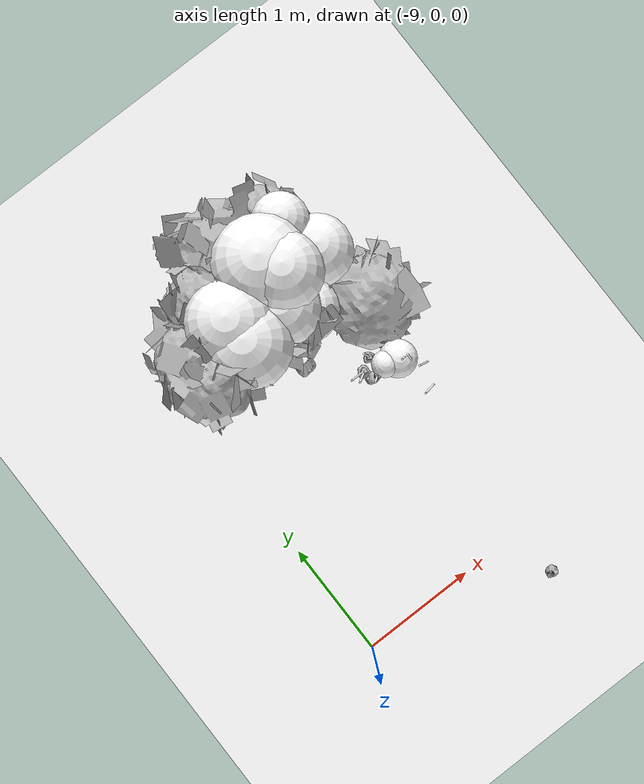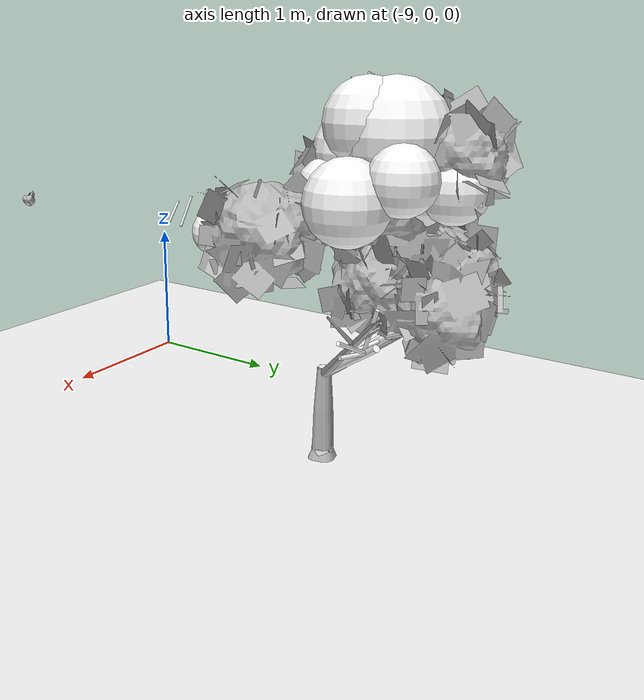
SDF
<sdf version="1.11">
 <world name="peach_orchard">
  <model name="ground">
   <static>true</static>
   <link name="link">
    <visual name="soil">
     <geometry><plane><normal>0 0 1</normal><size>32 22</size></plane></geometry>
     <material>
      <ambient>1 1 1 1</ambient>
      <diffuse>1 1 1 1</diffuse>
      <specular>0.1 0.1 0.1 1</specular>
      <pbr>
       <metal>
        <albedo_map>textures/soil_albedo.png</albedo_map>
        <normal_map type="tangent">textures/soil_normal.png</normal_map>
        <roughness>0.95</roughness>
        <metalness>0</metalness>
       </metal>
      </pbr>
     </material>
    </visual>
    <collision name="c_soil">
     <geometry><plane><normal>0 0 1</normal><size>32 22</size></plane></geometry>
    </collision>
   </link>
  </model>
  <model name="tree_r0_t4">
   <pose>-8 2.2 0 0 0 0</pose>
   <static>true</static>
   <link name="link">
    <visual name="tree_mesh">
     <pose>0 0 0 0 0 0.124176</pose>
     <geometry>
      <mesh><uri>model://peach_sim/meshes/peach_tree_a.glb</uri><scale>1.03481 1.03481 1.03481</scale></mesh>
     </geometry>
    </visual>
    <visual name="trunk_0">
     <pose>0 0 0.16603 0 0 0</pose>
     <geometry><cylinder><radius>0.0467822</radius><length>0.332061</length></cylinder></geometry>
     <material>
      <ambient>1 1 1 1</ambient>
      <diffuse>1 1 1 1</diffuse>
      <specular>0.1 0.1 0.1 1</specular>
      <pbr>
       <metal>
        <albedo_map>textures/bark_albedo.png</albedo_map>
        <normal_map type="tangent">textures/bark_normal.png</normal_map>
        <roughness>0.9</roughness>
        <metalness>0</metalness>
       </metal>
      </pbr>
     </material>
    </visual>
    <collision name="c_trunk_0">
     <pose>0 0 0.16603 0 0 0</pose>
     <geometry><cylinder><radius>0.0467822</radius><length>0.332061</length></cylinder></geometry>
    </collision>
    <visual name="trunk_1">
     <pose>0 0 0.467904 0 0 0</pose>
     <geometry><cylinder><radius>0.0336832</radius><length>0.271686</length></cylinder></geometry>
     <material>
      <ambient>1 1 1 1</ambient>
      <diffuse>1 1 1 1</diffuse>
      <specular>0.1 0.1 0.1 1</specular>
      <pbr>
       <metal>
        <albedo_map>textures/bark_albedo.png</albedo_map>
        <normal_map type="tangent">textures/bark_normal.png</normal_map>
        <roughness>0.9</roughness>
        <metalness>0</metalness>
       </metal>
      </pbr>
     </material>
    </visual>
    <collision name="c_trunk_1">
     <pose>0 0 0.467904 0 0 0</pose>
     <geometry><cylinder><radius>0.0336832</radius><length>0.271686</length></cylinder></geometry>
    </collision>
    <visual name="root_flare">
     <pose>0 0 0.035 0 0 0</pose>
     <geometry><cylinder><radius>0.0678342</radius><length>0.07</length></cylinder></geometry>
     <material>
      <ambient>1 1 1 1</ambient>
      <diffuse>1 1 1 1</diffuse>
      <specular>0.1 0.1 0.1 1</specular>
      <pbr>
       <metal>
        <albedo_map>textures/bark_albedo.png</albedo_map>
        <normal_map type="tangent">textures/bark_normal.png</normal_map>
        <roughness>0.95</roughness>
        <metalness>0</metalness>
       </metal>
      </pbr>
     </material>
    </visual>
    <visual name="scaffold_0">
     <pose>0.0321196 0.305239 0.796414 0 0.905205 1.46595</pose>
     <geometry><cylinder><radius>0.022</radius><length>0.78043</length></cylinder></geometry>
     <material>
      <ambient>1 1 1 1</ambient>
      <diffuse>1 1 1 1</diffuse>
      <specular>0.1 0.1 0.1 1</specular>
      <pbr>
       <metal>
        <albedo_map>textures/bark_albedo.png</albedo_map>
        <normal_map type="tangent">textures/bark_normal.png</normal_map>
        <roughness>0.9</roughness>
        <metalness>0</metalness>
       </metal>
      </pbr>
     </material>
    </visual>
    <collision name="c_scaffold_0">
     <pose>0.0321196 0.305239 0.796414 0 0.905205 1.46595</pose>
     <geometry><cylinder><radius>0.022</radius><length>0.78043</length></cylinder></geometry>
    </collision>
    <visual name="branchlet_0_0">
     <pose>-0.00279812 0.402704 1.02369 0 0.55477 -2.37734</pose>
     <geometry><cylinder><radius>0.012</radius><length>0.26425</length></cylinder></geometry>
     <material>
      <ambient>1 1 1 1</ambient>
      <diffuse>1 1 1 1</diffuse>
      <specular>0.1 0.1 0.1 1</specular>
      <pbr>
       <metal>
        <albedo_map>textures/bark_albedo.png</albedo_map>
        <normal_map type="tangent">textures/bark_normal.png</normal_map>
        <roughness>0.9</roughness>
        <metalness>0</metalness>
       </metal>
      </pbr>
     </material>
    </visual>
    <visual name="branchlet_0_1">
     <pose>0.124284 0.525791 0.946869 0 1.1553 0.909977</pose>
     <geometry><cylinder><radius>0.012</radius><length>0.284041</length></cylinder></geometry>
     <material>
      <ambient>1 1 1 1</ambient>
      <diffuse>1 1 1 1</diffuse>
      <specular>0.1 0.1 0.1 1</specular>
      <pbr>
       <metal>
        <albedo_map>textures/bark_albedo.png</albedo_map>
        <normal_map type="tangent">textures/bark_normal.png</normal_map>
        <roughness>0.9</roughness>
        <metalness>0</metalness>
       </metal>
      </pbr>
     </material>
    </visual>
    <visual name="branchlet_0_2">
     <pose>0.156323 0.350018 0.850596 0 1.71611 -0.387775</pose>
     <geometry><cylinder><radius>0.012</radius><length>0.250147</length></cylinder></geometry>
     <material>
      <ambient>1 1 1 1</ambient>
      <diffuse>1 1 1 1</diffuse>
      <specular>0.1 0.1 0.1 1</specular>
      <pbr>
       <metal>
        <albedo_map>textures/bark_albedo.png</albedo_map>
        <normal_map type="tangent">textures/bark_normal.png</normal_map>
        <roughness>0.9</roughness>
        <metalness>0</metalness>
       </metal>
      </pbr>
     </material>
    </visual>
    <visual name="scaffold_1">
     <pose>0.118995 0.234432 0.724889 0 0.998296 1.1011</pose>
     <geometry><cylinder><radius>0.022</radius><length>0.625552</length></cylinder></geometry>
     <material>
      <ambient>1 1 1 1</ambient>
      <diffuse>1 1 1 1</diffuse>
      <specular>0.1 0.1 0.1 1</specular>
      <pbr>
       <metal>
        <albedo_map>textures/bark_albedo.png</albedo_map>
        <normal_map type="tangent">textures/bark_normal.png</normal_map>
        <roughness>0.9</roughness>
        <metalness>0</metalness>
       </metal>
      </pbr>
     </material>
    </visual>
    <collision name="c_scaffold_1">
     <pose>0.118995 0.234432 0.724889 0 0.998296 1.1011</pose>
     <geometry><cylinder><radius>0.022</radius><length>0.625552</length></cylinder></geometry>
    </collision>
    <visual name="branchlet_1_0">
     <pose>0.342301 0.380955 0.907187 0 1.11521 -0.0484354</pose>
     <geometry><cylinder><radius>0.012</radius><length>0.324114</length></cylinder></geometry>
     <material>
      <ambient>1 1 1 1</ambient>
      <diffuse>1 1 1 1</diffuse>
      <specular>0.1 0.1 0.1 1</specular>
      <pbr>
       <metal>
        <albedo_map>textures/bark_albedo.png</albedo_map>
        <normal_map type="tangent">textures/bark_normal.png</normal_map>
        <roughness>0.9</roughness>
        <metalness>0</metalness>
       </metal>
      </pbr>
     </material>
    </visual>
    <visual name="branchlet_1_1">
     <pose>0.209369 0.412528 0.962713 0 0.389737 1.10147</pose>
     <geometry><cylinder><radius>0.012</radius><length>0.320844</length></cylinder></geometry>
     <material>
      <ambient>1 1 1 1</ambient>
      <diffuse>1 1 1 1</diffuse>
      <specular>0.1 0.1 0.1 1</specular>
      <pbr>
       <metal>
        <albedo_map>textures/bark_albedo.png</albedo_map>
        <normal_map type="tangent">textures/bark_normal.png</normal_map>
        <roughness>0.9</roughness>
        <metalness>0</metalness>
       </metal>
      </pbr>
     </material>
    </visual>
    <visual name="branchlet_1_2">
     <pose>0.299282 0.365067 0.850428 0 1.48755 -0.307441</pose>
     <geometry><cylinder><radius>0.012</radius><length>0.206692</length></cylinder></geometry>
     <material>
      <ambient>1 1 1 1</ambient>
      <diffuse>1 1 1 1</diffuse>
      <specular>0.1 0.1 0.1 1</specular>
      <pbr>
       <metal>
        <albedo_map>textures/bark_albedo.png</albedo_map>
        <normal_map type="tangent">textures/bark_normal.png</normal_map>
        <roughness>0.9</roughness>
        <metalness>0</metalness>
       </metal>
      </pbr>
     </material>
    </visual>
    <visual name="scaffold_2">
     <pose>-0.188945 0.313308 0.818416 0 0.947599 2.11347</pose>
     <geometry><cylinder><radius>0.022</radius><length>0.901143</length></cylinder></geometry>
     <material>
      <ambient>1 1 1 1</ambient>
      <diffuse>1 1 1 1</diffuse>
      <specular>0.1 0.1 0.1 1</specular>
      <pbr>
       <metal>
        <albedo_map>textures/bark_albedo.png</albedo_map>
        <normal_map type="tangent">textures/bark_normal.png</normal_map>
        <roughness>0.9</roughness>
        <metalness>0</metalness>
       </metal>
      </pbr>
     </material>
    </visual>
    <collision name="c_scaffold_2">
     <pose>-0.188945 0.313308 0.818416 0 0.947599 2.11347</pose>
     <geometry><cylinder><radius>0.022</radius><length>0.901143</length></cylinder></geometry>
    </collision>
    <visual name="branchlet_2_0">
     <pose>-0.113005 0.324711 0.981083 0 0.86739 -0.436879</pose>
     <geometry><cylinder><radius>0.012</radius><length>0.333666</length></cylinder></geometry>
     <material>
      <ambient>1 1 1 1</ambient>
      <diffuse>1 1 1 1</diffuse>
      <specular>0.1 0.1 0.1 1</specular>
      <pbr>
       <metal>
        <albedo_map>textures/bark_albedo.png</albedo_map>
        <normal_map type="tangent">textures/bark_normal.png</normal_map>
        <roughness>0.9</roughness>
        <metalness>0</metalness>
       </metal>
      </pbr>
     </material>
    </visual>
    <visual name="branchlet_2_1">
     <pose>-0.327153 0.643842 1.01585 0 1.4597 1.61781</pose>
     <geometry><cylinder><radius>0.012</radius><length>0.221481</length></cylinder></geometry>
     <material>
      <ambient>1 1 1 1</ambient>
      <diffuse>1 1 1 1</diffuse>
      <specular>0.1 0.1 0.1 1</specular>
      <pbr>
       <metal>
        <albedo_map>textures/bark_albedo.png</albedo_map>
        <normal_map type="tangent">textures/bark_normal.png</normal_map>
        <roughness>0.9</roughness>
        <metalness>0</metalness>
       </metal>
      </pbr>
     </material>
    </visual>
    <visual name="branchlet_2_2">
     <pose>-0.12745 0.290432 0.937392 0 0.505983 -0.358621</pose>
     <geometry><cylinder><radius>0.012</radius><length>0.271605</length></cylinder></geometry>
     <material>
      <ambient>1 1 1 1</ambient>
      <diffuse>1 1 1 1</diffuse>
      <specular>0.1 0.1 0.1 1</specular>
      <pbr>
       <metal>
        <albedo_map>textures/bark_albedo.png</albedo_map>
        <normal_map type="tangent">textures/bark_normal.png</normal_map>
        <roughness>0.9</roughness>
        <metalness>0</metalness>
       </metal>
      </pbr>
     </material>
    </visual>
    <visual name="canopy_0">
     <pose>0.0807357 0.448724 2.02448 0 0 0</pose>
     <geometry><sphere><radius>0.301745</radius></sphere></geometry>
     <material>
      <ambient>1 1 1 1</ambient>
      <diffuse>1 1 1 1</diffuse>
      <specular>0.1 0.1 0.1 1</specular>
      <pbr>
       <metal>
        <albedo_map>textures/leaf_albedo.png</albedo_map>
        <normal_map type="tangent">textures/leaf_normal.png</normal_map>
        <roughness>0.85</roughness>
        <metalness>0</metalness>
       </metal>
      </pbr>
     </material>
    </visual>
    <collision name="c_canopy_0">
     <pose>0.0807357 0.448724 2.02448 0 0 0</pose>
     <geometry><sphere><radius>0.301745</radius></sphere></geometry>
    </collision>
    <visual name="canopy_1">
     <pose>0.155423 0.329899 2.08576 0 0 0</pose>
     <geometry><sphere><radius>0.240136</radius></sphere></geometry>
     <material>
      <ambient>1 1 1 1</ambient>
      <diffuse>1 1 1 1</diffuse>
      <specular>0.1 0.1 0.1 1</specular>
      <pbr>
       <metal>
        <albedo_map>textures/leaf_albedo.png</albedo_map>
        <normal_map type="tangent">textures/leaf_normal.png</normal_map>
        <roughness>0.85</roughness>
        <metalness>0</metalness>
       </metal>
      </pbr>
     </material>
    </visual>
    <collision name="c_canopy_1">
     <pose>0.155423 0.329899 2.08576 0 0 0</pose>
     <geometry><sphere><radius>0.240136</radius></sphere></geometry>
    </collision>
    <visual name="canopy_2">
     <pose>-0.270776 0.287399 2.04142 0 0 0</pose>
     <geometry><sphere><radius>0.270461</radius></sphere></geometry>
     <material>
      <ambient>1 1 1 1</ambient>
      <diffuse>1 1 1 1</diffuse>
      <specular>0.1 0.1 0.1 1</specular>
      <pbr>
       <metal>
        <albedo_map>textures/leaf_albedo.png</albedo_map>
        <normal_map type="tangent">textures/leaf_normal.png</normal_map>
        <roughness>0.85</roughness>
        <metalness>0</metalness>
       </metal>
      </pbr>
     </material>
    </visual>
    <collision name="c_canopy_2">
     <pose>-0.270776 0.287399 2.04142 0 0 0</pose>
     <geometry><sphere><radius>0.270461</radius></sphere></geometry>
    </collision>
    <visual name="canopy_3">
     <pose>0.0234928 0.200356 1.91862 0 0 0</pose>
     <geometry><sphere><radius>0.244326</radius></sphere></geometry>
     <material>
      <ambient>1 1 1 1</ambient>
      <diffuse>1 1 1 1</diffuse>
      <specular>0.1 0.1 0.1 1</specular>
      <pbr>
       <metal>
        <albedo_map>textures/leaf_albedo.png</albedo_map>
        <normal_map type="tangent">textures/leaf_normal.png</normal_map>
        <roughness>0.85</roughness>
        <metalness>0</metalness>
       </metal>
      </pbr>
     </material>
    </visual>
    <visual name="canopy_4">
     <pose>0.157294 0.131995 1.69614 0 0 0</pose>
     <geometry><sphere><radius>0.213026</radius></sphere></geometry>
     <material>
      <ambient>1 1 1 1</ambient>
      <diffuse>1 1 1 1</diffuse>
      <specular>0.1 0.1 0.1 1</specular>
      <pbr>
       <metal>
        <albedo_map>textures/leaf_albedo.png</albedo_map>
        <normal_map type="tangent">textures/leaf_normal.png</normal_map>
        <roughness>0.85</roughness>
        <metalness>0</metalness>
       </metal>
      </pbr>
     </material>
    </visual>
    <visual name="canopy_5">
     <pose>-0.0537682 0.477585 1.78783 0 0 0</pose>
     <geometry><sphere><radius>0.289078</radius></sphere></geometry>
     <material>
      <ambient>1 1 1 1</ambient>
      <diffuse>1 1 1 1</diffuse>
      <specular>0.1 0.1 0.1 1</specular>
      <pbr>
       <metal>
        <albedo_map>textures/leaf_albedo.png</albedo_map>
        <normal_map type="tangent">textures/leaf_normal.png</normal_map>
        <roughness>0.85</roughness>
        <metalness>0</metalness>
       </metal>
      </pbr>
     </material>
    </visual>
    <visual name="canopy_6">
     <pose>-0.010897 0.756462 1.75376 0 0 0</pose>
     <geometry><sphere><radius>0.192801</radius></sphere></geometry>
     <material>
      <ambient>1 1 1 1</ambient>
      <diffuse>1 1 1 1</diffuse>
      <specular>0.1 0.1 0.1 1</specular>
      <pbr>
       <metal>
        <albedo_map>textures/leaf_albedo.png</albedo_map>
        <normal_map type="tangent">textures/leaf_normal.png</normal_map>
        <roughness>0.85</roughness>
        <metalness>0</metalness>
       </metal>
      </pbr>
     </material>
    </visual>
    <visual name="canopy_7">
     <pose>0.437513 0.377945 1.70798 0 0 0</pose>
     <geometry><sphere><radius>0.231717</radius></sphere></geometry>
     <material>
      <ambient>1 1 1 1</ambient>
      <diffuse>1 1 1 1</diffuse>
      <specular>0.1 0.1 0.1 1</specular>
      <pbr>
       <metal>
        <albedo_map>textures/leaf_albedo.png</albedo_map>
        <normal_map type="tangent">textures/leaf_normal.png</normal_map>
        <roughness>0.85</roughness>
        <metalness>0</metalness>
       </metal>
      </pbr>
     </material>
    </visual>
    <visual name="canopy_8">
     <pose>-0.270802 0.13924 2.00153 0 0 0</pose>
     <geometry><sphere><radius>0.278982</radius></sphere></geometry>
     <material>
      <ambient>1 1 1 1</ambient>
      <diffuse>1 1 1 1</diffuse>
      <specular>0.1 0.1 0.1 1</specular>
      <pbr>
       <metal>
        <albedo_map>textures/leaf_albedo.png</albedo_map>
        <normal_map type="tangent">textures/leaf_normal.png</normal_map>
        <roughness>0.85</roughness>
        <metalness>0</metalness>
       </metal>
      </pbr>
     </material>
    </visual>
    <visual name="canopy_9">
     <pose>-0.019095 0.321861 1.63079 0 0 0</pose>
     <geometry><sphere><radius>0.240084</radius></sphere></geometry>
     <material>
      <ambient>1 1 1 1</ambient>
      <diffuse>1 1 1 1</diffuse>
      <specular>0.1 0.1 0.1 1</specular>
      <pbr>
       <metal>
        <albedo_map>textures/leaf_albedo.png</albedo_map>
        <normal_map type="tangent">textures/leaf_normal.png</normal_map>
        <roughness>0.85</roughness>
        <metalness>0</metalness>
       </metal>
      </pbr>
     </material>
    </visual>
    <visual name="canopy_10">
     <pose>0.351519 0.633683 1.8276 0 0 0</pose>
     <geometry><sphere><radius>0.183737</radius></sphere></geometry>
     <material>
      <ambient>1 1 1 1</ambient>
      <diffuse>1 1 1 1</diffuse>
      <specular>0.1 0.1 0.1 1</specular>
      <pbr>
       <metal>
        <albedo_map>textures/leaf_albedo.png</albedo_map>
        <normal_map type="tangent">textures/leaf_normal.png</normal_map>
        <roughness>0.85</roughness>
        <metalness>0</metalness>
       </metal>
      </pbr>
     </material>
    </visual>
    <visual name="canopy_11">
     <pose>-0.131967 0.298559 1.82585 0 0 0</pose>
     <geometry><sphere><radius>0.216013</radius></sphere></geometry>
     <material>
      <ambient>1 1 1 1</ambient>
      <diffuse>1 1 1 1</diffuse>
      <specular>0.1 0.1 0.1 1</specular>
      <pbr>
       <metal>
        <albedo_map>textures/leaf_albedo.png</albedo_map>
        <normal_map type="tangent">textures/leaf_normal.png</normal_map>
        <roughness>0.85</roughness>
        <metalness>0</metalness>
       </metal>
      </pbr>
     </material>
    </visual>
    <visual name="foliage_0">
     <pose>0.45351 -0.458302 1.46513 0 0 0</pose>
     <geometry><sphere><radius>0.129508</radius></sphere></geometry>
     <material>
      <ambient>1 1 1 1</ambient>
      <diffuse>1 1 1 1</diffuse>
      <specular>0.1 0.1 0.1 1</specular>
      <pbr>
       <metal>
        <albedo_map>textures/leaf_albedo.png</albedo_map>
        <normal_map type="tangent">textures/leaf_normal.png</normal_map>
        <roughness>0.85</roughness>
        <metalness>0</metalness>
       </metal>
      </pbr>
     </material>
    </visual>
    <visual name="foliage_4">
     <pose>0.359901 -0.436373 1.50517 0 0 0</pose>
     <geometry><sphere><radius>0.0906063</radius></sphere></geometry>
     <material>
      <ambient>1 1 1 1</ambient>
      <diffuse>1 1 1 1</diffuse>
      <specular>0.1 0.1 0.1 1</specular>
      <pbr>
       <metal>
        <albedo_map>textures/leaf_albedo.png</albedo_map>
        <normal_map type="tangent">textures/leaf_normal.png</normal_map>
        <roughness>0.85</roughness>
        <metalness>0</metalness>
       </metal>
      </pbr>
     </material>
    </visual>
    <visual name="twig_0">
     <pose>0.486351 -0.478264 1.56989 0 0.564653 -3.05882</pose>
     <geometry><cylinder><radius>0.007</radius><length>0.140639</length></cylinder></geometry>
     <material>
      <ambient>1 1 1 1</ambient>
      <diffuse>1 1 1 1</diffuse>
      <specular>0.1 0.1 0.1 1</specular>
      <pbr>
       <metal>
        <albedo_map>textures/bark_albedo.png</albedo_map>
        <normal_map type="tangent">textures/bark_normal.png</normal_map>
        <roughness>0.9</roughness>
        <metalness>0</metalness>
       </metal>
      </pbr>
     </material>
    </visual>
    <visual name="twig_1">
     <pose>0.498496 -0.506441 1.60045 0 0.279909 2.07289</pose>
     <geometry><cylinder><radius>0.007</radius><length>0.21691</length></cylinder></geometry>
     <material>
      <ambient>1 1 1 1</ambient>
      <diffuse>1 1 1 1</diffuse>
      <specular>0.1 0.1 0.1 1</specular>
      <pbr>
       <metal>
        <albedo_map>textures/bark_albedo.png</albedo_map>
        <normal_map type="tangent">textures/bark_normal.png</normal_map>
        <roughness>0.9</roughness>
        <metalness>0</metalness>
       </metal>
      </pbr>
     </material>
    </visual>
    <visual name="twig_2">
     <pose>0.547261 -0.586724 1.58284 0 0.483161 2.97611</pose>
     <geometry><cylinder><radius>0.007</radius><length>0.177365</length></cylinder></geometry>
     <material>
      <ambient>1 1 1 1</ambient>
      <diffuse>1 1 1 1</diffuse>
      <specular>0.1 0.1 0.1 1</specular>
      <pbr>
       <metal>
        <albedo_map>textures/bark_albedo.png</albedo_map>
        <normal_map type="tangent">textures/bark_normal.png</normal_map>
        <roughness>0.9</roughness>
        <metalness>0</metalness>
       </metal>
      </pbr>
     </material>
    </visual>
    <visual name="twig_3">
     <pose>0.482164 -0.738553 1.55499 0 0.718311 -3.05312</pose>
     <geometry><cylinder><radius>0.007</radius><length>0.137105</length></cylinder></geometry>
     <material>
      <ambient>1 1 1 1</ambient>
      <diffuse>1 1 1 1</diffuse>
      <specular>0.1 0.1 0.1 1</specular>
      <pbr>
       <metal>
        <albedo_map>textures/bark_albedo.png</albedo_map>
        <normal_map type="tangent">textures/bark_normal.png</normal_map>
        <roughness>0.9</roughness>
        <metalness>0</metalness>
       </metal>
      </pbr>
     </material>
    </visual>
    <visual name="twig_4">
     <pose>0.295524 -0.320644 1.54516 0 0.436929 2.2179</pose>
     <geometry><cylinder><radius>0.007</radius><length>0.107417</length></cylinder></geometry>
     <material>
      <ambient>1 1 1 1</ambient>
      <diffuse>1 1 1 1</diffuse>
      <specular>0.1 0.1 0.1 1</specular>
      <pbr>
       <metal>
        <albedo_map>textures/bark_albedo.png</albedo_map>
        <normal_map type="tangent">textures/bark_normal.png</normal_map>
        <roughness>0.9</roughness>
        <metalness>0</metalness>
       </metal>
      </pbr>
     </material>
    </visual>
    <visual name="twig_5">
     <pose>0.181869 -0.413862 1.59642 0 0.519008 -2.65654</pose>
     <geometry><cylinder><radius>0.007</radius><length>0.173844</length></cylinder></geometry>
     <material>
      <ambient>1 1 1 1</ambient>
      <diffuse>1 1 1 1</diffuse>
      <specular>0.1 0.1 0.1 1</specular>
      <pbr>
       <metal>
        <albedo_map>textures/bark_albedo.png</albedo_map>
        <normal_map type="tangent">textures/bark_normal.png</normal_map>
        <roughness>0.9</roughness>
        <metalness>0</metalness>
       </metal>
      </pbr>
     </material>
    </visual>
    <visual name="twig_6">
     <pose>0.163797 -0.392231 1.6213 0 0.552168 -3.09349</pose>
     <geometry><cylinder><radius>0.007</radius><length>0.218486</length></cylinder></geometry>
     <material>
      <ambient>1 1 1 1</ambient>
      <diffuse>1 1 1 1</diffuse>
      <specular>0.1 0.1 0.1 1</specular>
      <pbr>
       <metal>
        <albedo_map>textures/bark_albedo.png</albedo_map>
        <normal_map type="tangent">textures/bark_normal.png</normal_map>
        <roughness>0.9</roughness>
        <metalness>0</metalness>
       </metal>
      </pbr>
     </material>
    </visual>
    <visual name="twig_7">
     <pose>0.249174 -0.479757 1.5562 0 0.521927 -2.60936</pose>
     <geometry><cylinder><radius>0.007</radius><length>0.106226</length></cylinder></geometry>
     <material>
      <ambient>1 1 1 1</ambient>
      <diffuse>1 1 1 1</diffuse>
      <specular>0.1 0.1 0.1 1</specular>
      <pbr>
       <metal>
        <albedo_map>textures/bark_albedo.png</albedo_map>
        <normal_map type="tangent">textures/bark_normal.png</normal_map>
        <roughness>0.9</roughness>
        <metalness>0</metalness>
       </metal>
      </pbr>
     </material>
    </visual>
   </link>
  </model>
  <model name="peach_tree_r0_t3_08">
   <pose>-7.59315 0.045563 1.45 0 0.700705 -3.01845</pose>
   <static>true</static>
   <link name="bag">
    <visual name="bag_mesh">
     <pose>0 0 0.0403267 0 0 -0</pose>
     <geometry>
      <mesh><uri>model://peach_sim/meshes/bagged_peach.glb</uri><scale>0.928052 1.11434 0.916516</scale></mesh>
     </geometry>
    </visual>
    <visual name="body">
     <pose>0 0 0.0223267 0 0 0</pose>
     <geometry><ellipsoid><radii>0.034802 0.0289729 0.0241128</radii></ellipsoid></geometry>
     <material>
      <ambient>1 1 1 1</ambient>
      <diffuse>1 1 1 1</diffuse>
      <specular>0.1 0.1 0.1 1</specular>
      <pbr>
       <metal>
        <albedo_map>textures/paper_bag_albedo.png</albedo_map>
        <normal_map type="tangent">textures/paper_bag_normal.png</normal_map>
        <roughness>0.72</roughness>
        <metalness>0</metalness>
       </metal>
      </pbr>
     </material>
    </visual>
    <visual name="bottom_fold">
     <pose>0 0 0.012 0 0 0.35</pose>
     <geometry><box><size>0.053943 0.0333189 0.022</size></box></geometry>
     <material>
      <ambient>1 1 1 1</ambient>
      <diffuse>1 1 1 1</diffuse>
      <specular>0.1 0.1 0.1 1</specular>
      <pbr>
       <metal>
        <albedo_map>textures/paper_bag_albedo.png</albedo_map>
        <normal_map type="tangent">textures/paper_bag_normal.png</normal_map>
        <roughness>0.8</roughness>
        <metalness>0</metalness>
       </metal>
      </pbr>
     </material>
    </visual>
    <visual name="fruit">
     <pose>0 0 0.0210824 0 0 0</pose>
     <geometry><sphere><radius>0.0281657</radius></sphere></geometry>
     <material>
      <ambient>1 1 1 1</ambient>
      <diffuse>1 1 1 1</diffuse>
      <specular>0.1 0.1 0.1 1</specular>
      <pbr>
       <metal>
        <albedo_map>textures/fruit_skin_albedo.png</albedo_map>
        <normal_map type="tangent">textures/fruit_skin_normal.png</normal_map>
        <roughness>0.55</roughness>
        <metalness>0</metalness>
       </metal>
      </pbr>
     </material>
    </visual>
    <visual name="neck">
     <pose>0 0 0.0536534 0 0 0</pose>
     <geometry><cylinder><radius>0.013</radius><length>0.018</length></cylinder></geometry>
     <material>
      <ambient>1 1 1 1</ambient>
      <diffuse>1 1 1 1</diffuse>
      <specular>0.1 0.1 0.1 1</specular>
      <pbr>
       <metal>
        <albedo_map>textures/paper_bag_albedo.png</albedo_map>
        <normal_map type="tangent">textures/paper_bag_normal.png</normal_map>
        <roughness>0.75</roughness>
        <metalness>0</metalness>
       </metal>
      </pbr>
     </material>
    </visual>
    <visual name="gather">
     <pose>0 0 0.0346534 0 0 0</pose>
     <geometry><cylinder><radius>0.019</radius><length>0.02</length></cylinder></geometry>
     <material>
      <ambient>1 1 1 1</ambient>
      <diffuse>1 1 1 1</diffuse>
      <specular>0.1 0.1 0.1 1</specular>
      <pbr>
       <metal>
        <albedo_map>textures/paper_bag_albedo.png</albedo_map>
        <normal_map type="tangent">textures/paper_bag_normal.png</normal_map>
        <roughness>0.8</roughness>
        <metalness>0</metalness>
       </metal>
      </pbr>
     </material>
    </visual>
    <visual name="inner_paper">
     <pose>0 0 0.0586534 0 0 0</pose>
     <geometry><cylinder><radius>0.01</radius><length>0.008</length></cylinder></geometry>
     <material>
      <ambient>0.180392 0.14902 0.133333 1</ambient>
      <diffuse>0.180392 0.14902 0.133333 1</diffuse>
      <specular>0.1 0.1 0.1 1</specular>
     </material>
    </visual>
    <visual name="wire_0">
     <pose>0 0 0.0486534 0 0 0</pose>
     <geometry><cylinder><radius>0.0205</radius><length>0.0035</length></cylinder></geometry>
     <material>
      <ambient>0.25 0.25 0.25 1</ambient>
      <diffuse>0.25 0.25 0.25 1</diffuse>
      <specular>0.1 0.1 0.1 1</specular>
     </material>
    </visual>
    <visual name="wire_1">
     <pose>0 0 0.0556534 0 0 0</pose>
     <geometry><cylinder><radius>0.0205</radius><length>0.0035</length></cylinder></geometry>
     <material>
      <ambient>0.25 0.25 0.25 1</ambient>
      <diffuse>0.25 0.25 0.25 1</diffuse>
      <specular>0.1 0.1 0.1 1</specular>
     </material>
    </visual>
    <visual name="wire_tail">
     <pose>0.01 0 0.0566534 0 0.521618 0</pose>
     <geometry><cylinder><radius>0.0012</radius><length>0.026</length></cylinder></geometry>
     <material>
      <ambient>0.25 0.25 0.25 1</ambient>
      <diffuse>0.25 0.25 0.25 1</diffuse>
      <specular>0.1 0.1 0.1 1</specular>
     </material>
    </visual>
    <collision name="c_body">
     <pose>0 0 0.0223267 0 0 0</pose>
     <geometry><cylinder><radius>0.034802</radius><length>0.0446534</length></cylinder></geometry>
    </collision>
   </link>
  </model>
  <model name="peach_tree_r0_t4_04">
   <pose>-7.69095 1.86137 1.42219 0 0.00302114 -0.688612</pose>
   <static>true</static>
   <link name="bag">
    <visual name="bag_mesh">
     <pose>0 0 0.0461562 0 0 -0</pose>
     <geometry>
      <mesh><uri>model://peach_sim/meshes/bagged_peach.glb</uri><scale>0.942811 1.07692 1.04901</scale></mesh>
     </geometry>
    </visual>
    <visual name="body">
     <pose>0 0 0.0281562 0 0 0</pose>
     <geometry><ellipsoid><radii>0.0353554 0.028 0.0304087</radii></ellipsoid></geometry>
     <material>
      <ambient>1 1 1 1</ambient>
      <diffuse>1 1 1 1</diffuse>
      <specular>0.1 0.1 0.1 1</specular>
      <pbr>
       <metal>
        <albedo_map>textures/paper_bag_albedo.png</albedo_map>
        <normal_map type="tangent">textures/paper_bag_normal.png</normal_map>
        <roughness>0.72</roughness>
        <metalness>0</metalness>
       </metal>
      </pbr>
     </material>
    </visual>
    <visual name="bottom_fold">
     <pose>0 0 0.012 0 0 0.35</pose>
     <geometry><box><size>0.0548009 0.0322001 0.022</size></box></geometry>
     <material>
      <ambient>1 1 1 1</ambient>
      <diffuse>1 1 1 1</diffuse>
      <specular>0.1 0.1 0.1 1</specular>
      <pbr>
       <metal>
        <albedo_map>textures/paper_bag_albedo.png</albedo_map>
        <normal_map type="tangent">textures/paper_bag_normal.png</normal_map>
        <roughness>0.8</roughness>
        <metalness>0</metalness>
       </metal>
      </pbr>
     </material>
    </visual>
    <visual name="fruit">
     <pose>0 0 0.0175431 0 0 0</pose>
     <geometry><sphere><radius>0.0244848</radius></sphere></geometry>
     <material>
      <ambient>1 1 1 1</ambient>
      <diffuse>1 1 1 1</diffuse>
      <specular>0.1 0.1 0.1 1</specular>
      <pbr>
       <metal>
        <albedo_map>textures/fruit_skin_albedo.png</albedo_map>
        <normal_map type="tangent">textures/fruit_skin_normal.png</normal_map>
        <roughness>0.55</roughness>
        <metalness>0</metalness>
       </metal>
      </pbr>
     </material>
    </visual>
    <visual name="neck">
     <pose>0 0 0.0653125 0 0 0</pose>
     <geometry><cylinder><radius>0.013</radius><length>0.018</length></cylinder></geometry>
     <material>
      <ambient>1 1 1 1</ambient>
      <diffuse>1 1 1 1</diffuse>
      <specular>0.1 0.1 0.1 1</specular>
      <pbr>
       <metal>
        <albedo_map>textures/paper_bag_albedo.png</albedo_map>
        <normal_map type="tangent">textures/paper_bag_normal.png</normal_map>
        <roughness>0.75</roughness>
        <metalness>0</metalness>
       </metal>
      </pbr>
     </material>
    </visual>
    <visual name="gather">
     <pose>0 0 0.0463125 0 0 0</pose>
     <geometry><cylinder><radius>0.019</radius><length>0.02</length></cylinder></geometry>
     <material>
      <ambient>1 1 1 1</ambient>
      <diffuse>1 1 1 1</diffuse>
      <specular>0.1 0.1 0.1 1</specular>
      <pbr>
       <metal>
        <albedo_map>textures/paper_bag_albedo.png</albedo_map>
        <normal_map type="tangent">textures/paper_bag_normal.png</normal_map>
        <roughness>0.8</roughness>
        <metalness>0</metalness>
       </metal>
      </pbr>
     </material>
    </visual>
    <visual name="inner_paper">
     <pose>0 0 0.0703125 0 0 0</pose>
     <geometry><cylinder><radius>0.01</radius><length>0.008</length></cylinder></geometry>
     <material>
      <ambient>0.180392 0.14902 0.133333 1</ambient>
      <diffuse>0.180392 0.14902 0.133333 1</diffuse>
      <specular>0.1 0.1 0.1 1</specular>
     </material>
    </visual>
    <visual name="wire_0">
     <pose>0 0 0.0603125 0 0 0</pose>
     <geometry><cylinder><radius>0.0205</radius><length>0.0035</length></cylinder></geometry>
     <material>
      <ambient>0.25 0.25 0.25 1</ambient>
      <diffuse>0.25 0.25 0.25 1</diffuse>
      <specular>0.1 0.1 0.1 1</specular>
     </material>
    </visual>
    <visual name="wire_1">
     <pose>0 0 0.0673125 0 0 0</pose>
     <geometry><cylinder><radius>0.0205</radius><length>0.0035</length></cylinder></geometry>
     <material>
      <ambient>0.25 0.25 0.25 1</ambient>
      <diffuse>0.25 0.25 0.25 1</diffuse>
      <specular>0.1 0.1 0.1 1</specular>
     </material>
    </visual>
    <visual name="wire_tail">
     <pose>0.01 0 0.0683125 0 0.521618 0</pose>
     <geometry><cylinder><radius>0.0012</radius><length>0.026</length></cylinder></geometry>
     <material>
      <ambient>0.25 0.25 0.25 1</ambient>
      <diffuse>0.25 0.25 0.25 1</diffuse>
      <specular>0.1 0.1 0.1 1</specular>
     </material>
    </visual>
    <collision name="c_body">
     <pose>0 0 0.0281562 0 0 0</pose>
     <geometry><cylinder><radius>0.0353554</radius><length>0.0563125</length></cylinder></geometry>
    </collision>
   </link>
  </model>
  <model name="peach_tree_r0_t4_05">
   <pose>-7.78 1.80627 1.45 0 0.000405566 -1.17555</pose>
   <static>true</static>
   <link name="bag">
    <visual name="bag_mesh">
     <pose>0 0 0.0444724 0 0 -0</pose>
     <geometry>
      <mesh><uri>model://peach_sim/meshes/bagged_peach.glb</uri><scale>0.90756 0.999261 1.01074</scale></mesh>
     </geometry>
    </visual>
    <visual name="body">
     <pose>0 0 0.0264724 0 0 0</pose>
     <geometry><ellipsoid><radii>0.0340335 0.0259808 0.0285902</radii></ellipsoid></geometry>
     <material>
      <ambient>1 1 1 1</ambient>
      <diffuse>1 1 1 1</diffuse>
      <specular>0.1 0.1 0.1 1</specular>
      <pbr>
       <metal>
        <albedo_map>textures/paper_bag_albedo.png</albedo_map>
        <normal_map type="tangent">textures/paper_bag_normal.png</normal_map>
        <roughness>0.72</roughness>
        <metalness>0</metalness>
       </metal>
      </pbr>
     </material>
    </visual>
    <visual name="bottom_fold">
     <pose>0 0 0.012 0 0 0.35</pose>
     <geometry><box><size>0.0527519 0.0298779 0.022</size></box></geometry>
     <material>
      <ambient>1 1 1 1</ambient>
      <diffuse>1 1 1 1</diffuse>
      <specular>0.1 0.1 0.1 1</specular>
      <pbr>
       <metal>
        <albedo_map>textures/paper_bag_albedo.png</albedo_map>
        <normal_map type="tangent">textures/paper_bag_normal.png</normal_map>
        <roughness>0.8</roughness>
        <metalness>0</metalness>
       </metal>
      </pbr>
     </material>
    </visual>
    <visual name="fruit">
     <pose>0 0 0.0190336 0 0 0</pose>
     <geometry><sphere><radius>0.0260349</radius></sphere></geometry>
     <material>
      <ambient>1 1 1 1</ambient>
      <diffuse>1 1 1 1</diffuse>
      <specular>0.1 0.1 0.1 1</specular>
      <pbr>
       <metal>
        <albedo_map>textures/fruit_skin_albedo.png</albedo_map>
        <normal_map type="tangent">textures/fruit_skin_normal.png</normal_map>
        <roughness>0.55</roughness>
        <metalness>0</metalness>
       </metal>
      </pbr>
     </material>
    </visual>
    <visual name="neck">
     <pose>0 0 0.0619447 0 0 0</pose>
     <geometry><cylinder><radius>0.013</radius><length>0.018</length></cylinder></geometry>
     <material>
      <ambient>1 1 1 1</ambient>
      <diffuse>1 1 1 1</diffuse>
      <specular>0.1 0.1 0.1 1</specular>
      <pbr>
       <metal>
        <albedo_map>textures/paper_bag_albedo.png</albedo_map>
        <normal_map type="tangent">textures/paper_bag_normal.png</normal_map>
        <roughness>0.75</roughness>
        <metalness>0</metalness>
       </metal>
      </pbr>
     </material>
    </visual>
    <visual name="gather">
     <pose>0 0 0.0429447 0 0 0</pose>
     <geometry><cylinder><radius>0.019</radius><length>0.02</length></cylinder></geometry>
     <material>
      <ambient>1 1 1 1</ambient>
      <diffuse>1 1 1 1</diffuse>
      <specular>0.1 0.1 0.1 1</specular>
      <pbr>
       <metal>
        <albedo_map>textures/paper_bag_albedo.png</albedo_map>
        <normal_map type="tangent">textures/paper_bag_normal.png</normal_map>
        <roughness>0.8</roughness>
        <metalness>0</metalness>
       </metal>
      </pbr>
     </material>
    </visual>
    <visual name="inner_paper">
     <pose>0 0 0.0669447 0 0 0</pose>
     <geometry><cylinder><radius>0.01</radius><length>0.008</length></cylinder></geometry>
     <material>
      <ambient>0.180392 0.14902 0.133333 1</ambient>
      <diffuse>0.180392 0.14902 0.133333 1</diffuse>
      <specular>0.1 0.1 0.1 1</specular>
     </material>
    </visual>
    <visual name="wire_0">
     <pose>0 0 0.0569447 0 0 0</pose>
     <geometry><cylinder><radius>0.0205</radius><length>0.0035</length></cylinder></geometry>
     <material>
      <ambient>0.25 0.25 0.25 1</ambient>
      <diffuse>0.25 0.25 0.25 1</diffuse>
      <specular>0.1 0.1 0.1 1</specular>
     </material>
    </visual>
    <visual name="wire_1">
     <pose>0 0 0.0639447 0 0 0</pose>
     <geometry><cylinder><radius>0.0205</radius><length>0.0035</length></cylinder></geometry>
     <material>
      <ambient>0.25 0.25 0.25 1</ambient>
      <diffuse>0.25 0.25 0.25 1</diffuse>
      <specular>0.1 0.1 0.1 1</specular>
     </material>
    </visual>
    <visual name="wire_tail">
     <pose>0.01 0 0.0649447 0 0.521618 0</pose>
     <geometry><cylinder><radius>0.0012</radius><length>0.026</length></cylinder></geometry>
     <material>
      <ambient>0.25 0.25 0.25 1</ambient>
      <diffuse>0.25 0.25 0.25 1</diffuse>
      <specular>0.1 0.1 0.1 1</specular>
     </material>
    </visual>
    <collision name="c_body">
     <pose>0 0 0.0264724 0 0 0</pose>
     <geometry><cylinder><radius>0.0340335</radius><length>0.0529447</length></cylinder></geometry>
    </collision>
   </link>
  </model>
  <model name="peach_tree_r0_t4_06">
   <pose>-7.78 1.80607 1.45 0 0.0583905 1.34329</pose>
   <static>true</static>
   <link name="bag">
    <visual name="bag_mesh">
     <pose>0 0 0.0482148 0 0 0</pose>
     <geometry>
      <mesh><uri>model://peach_sim/meshes/bagged_peach.glb</uri><scale>1.08925 1.19214 1.09579</scale></mesh>
     </geometry>
    </visual>
    <visual name="body">
     <pose>0 0 0.0302148 0 0 0</pose>
     <geometry><ellipsoid><radii>0.0408467 0.0309956 0.032632</radii></ellipsoid></geometry>
     <material>
      <ambient>1 1 1 1</ambient>
      <diffuse>1 1 1 1</diffuse>
      <specular>0.1 0.1 0.1 1</specular>
      <pbr>
       <metal>
        <albedo_map>textures/paper_bag_albedo.png</albedo_map>
        <normal_map type="tangent">textures/paper_bag_normal.png</normal_map>
        <roughness>0.72</roughness>
        <metalness>0</metalness>
       </metal>
      </pbr>
     </material>
    </visual>
    <visual name="bottom_fold">
     <pose>0 0 0.012 0 0 0.35</pose>
     <geometry><box><size>0.0633124 0.0356449 0.022</size></box></geometry>
     <material>
      <ambient>1 1 1 1</ambient>
      <diffuse>1 1 1 1</diffuse>
      <specular>0.1 0.1 0.1 1</specular>
      <pbr>
       <metal>
        <albedo_map>textures/paper_bag_albedo.png</albedo_map>
        <normal_map type="tangent">textures/paper_bag_normal.png</normal_map>
        <roughness>0.8</roughness>
        <metalness>0</metalness>
       </metal>
      </pbr>
     </material>
    </visual>
    <visual name="fruit">
     <pose>0 0 0.0202223 0 0 0</pose>
     <geometry><sphere><radius>0.0272712</radius></sphere></geometry>
     <material>
      <ambient>1 1 1 1</ambient>
      <diffuse>1 1 1 1</diffuse>
      <specular>0.1 0.1 0.1 1</specular>
      <pbr>
       <metal>
        <albedo_map>textures/fruit_skin_albedo.png</albedo_map>
        <normal_map type="tangent">textures/fruit_skin_normal.png</normal_map>
        <roughness>0.55</roughness>
        <metalness>0</metalness>
       </metal>
      </pbr>
     </material>
    </visual>
    <visual name="neck">
     <pose>0 0 0.0694296 0 0 0</pose>
     <geometry><cylinder><radius>0.013</radius><length>0.018</length></cylinder></geometry>
     <material>
      <ambient>1 1 1 1</ambient>
      <diffuse>1 1 1 1</diffuse>
      <specular>0.1 0.1 0.1 1</specular>
      <pbr>
       <metal>
        <albedo_map>textures/paper_bag_albedo.png</albedo_map>
        <normal_map type="tangent">textures/paper_bag_normal.png</normal_map>
        <roughness>0.75</roughness>
        <metalness>0</metalness>
       </metal>
      </pbr>
     </material>
    </visual>
    <visual name="gather">
     <pose>0 0 0.0504296 0 0 0</pose>
     <geometry><cylinder><radius>0.019</radius><length>0.02</length></cylinder></geometry>
     <material>
      <ambient>1 1 1 1</ambient>
      <diffuse>1 1 1 1</diffuse>
      <specular>0.1 0.1 0.1 1</specular>
      <pbr>
       <metal>
        <albedo_map>textures/paper_bag_albedo.png</albedo_map>
        <normal_map type="tangent">textures/paper_bag_normal.png</normal_map>
        <roughness>0.8</roughness>
        <metalness>0</metalness>
       </metal>
      </pbr>
     </material>
    </visual>
    <visual name="inner_paper">
     <pose>0 0 0.0744296 0 0 0</pose>
     <geometry><cylinder><radius>0.01</radius><length>0.008</length></cylinder></geometry>
     <material>
      <ambient>0.180392 0.14902 0.133333 1</ambient>
      <diffuse>0.180392 0.14902 0.133333 1</diffuse>
      <specular>0.1 0.1 0.1 1</specular>
     </material>
    </visual>
    <visual name="wire_0">
     <pose>0 0 0.0644296 0 0 0</pose>
     <geometry><cylinder><radius>0.0205</radius><length>0.0035</length></cylinder></geometry>
     <material>
      <ambient>0.25 0.25 0.25 1</ambient>
      <diffuse>0.25 0.25 0.25 1</diffuse>
      <specular>0.1 0.1 0.1 1</specular>
     </material>
    </visual>
    <visual name="wire_1">
     <pose>0 0 0.0714296 0 0 0</pose>
     <geometry><cylinder><radius>0.0205</radius><length>0.0035</length></cylinder></geometry>
     <material>
      <ambient>0.25 0.25 0.25 1</ambient>
      <diffuse>0.25 0.25 0.25 1</diffuse>
      <specular>0.1 0.1 0.1 1</specular>
     </material>
    </visual>
    <visual name="wire_tail">
     <pose>0.01 0 0.0724296 0 0.521618 0</pose>
     <geometry><cylinder><radius>0.0012</radius><length>0.026</length></cylinder></geometry>
     <material>
      <ambient>0.25 0.25 0.25 1</ambient>
      <diffuse>0.25 0.25 0.25 1</diffuse>
      <specular>0.1 0.1 0.1 1</specular>
     </material>
    </visual>
    <collision name="c_body">
     <pose>0 0 0.0302148 0 0 0</pose>
     <geometry><cylinder><radius>0.0408467</radius><length>0.0604296</length></cylinder></geometry>
    </collision>
   </link>
  </model>
  <model name="peach_tree_r0_t4_07">
   <pose>-7.78 1.75049 1.45 0 0.737339 -0.312643</pose>
   <static>true</static>
   <link name="bag">
    <visual name="bag_mesh">
     <pose>0 0 0.049635 0 0 -0</pose>
     <geometry>
      <mesh><uri>model://peach_sim/meshes/bagged_peach.glb</uri><scale>1.07998 1.16949 1.12807</scale></mesh>
     </geometry>
    </visual>
    <visual name="body">
     <pose>0 0 0.031635 0 0 0</pose>
     <geometry><ellipsoid><radii>0.0404992 0.0304067 0.0341658</radii></ellipsoid></geometry>
     <material>
      <ambient>1 1 1 1</ambient>
      <diffuse>1 1 1 1</diffuse>
      <specular>0.1 0.1 0.1 1</specular>
      <pbr>
       <metal>
        <albedo_map>textures/paper_bag_albedo.png</albedo_map>
        <normal_map type="tangent">textures/paper_bag_normal.png</normal_map>
        <roughness>0.72</roughness>
        <metalness>0</metalness>
       </metal>
      </pbr>
     </material>
    </visual>
    <visual name="bottom_fold">
     <pose>0 0 0.012 0 0 0.35</pose>
     <geometry><box><size>0.0627738 0.0349677 0.022</size></box></geometry>
     <material>
      <ambient>1 1 1 1</ambient>
      <diffuse>1 1 1 1</diffuse>
      <specular>0.1 0.1 0.1 1</specular>
      <pbr>
       <metal>
        <albedo_map>textures/paper_bag_albedo.png</albedo_map>
        <normal_map type="tangent">textures/paper_bag_normal.png</normal_map>
        <roughness>0.8</roughness>
        <metalness>0</metalness>
       </metal>
      </pbr>
     </material>
    </visual>
    <visual name="fruit">
     <pose>0 0 0.018326 0 0 0</pose>
     <geometry><sphere><radius>0.025299</radius></sphere></geometry>
     <material>
      <ambient>1 1 1 1</ambient>
      <diffuse>1 1 1 1</diffuse>
      <specular>0.1 0.1 0.1 1</specular>
      <pbr>
       <metal>
        <albedo_map>textures/fruit_skin_albedo.png</albedo_map>
        <normal_map type="tangent">textures/fruit_skin_normal.png</normal_map>
        <roughness>0.55</roughness>
        <metalness>0</metalness>
       </metal>
      </pbr>
     </material>
    </visual>
    <visual name="neck">
     <pose>0 0 0.07227 0 0 0</pose>
     <geometry><cylinder><radius>0.013</radius><length>0.018</length></cylinder></geometry>
     <material>
      <ambient>1 1 1 1</ambient>
      <diffuse>1 1 1 1</diffuse>
      <specular>0.1 0.1 0.1 1</specular>
      <pbr>
       <metal>
        <albedo_map>textures/paper_bag_albedo.png</albedo_map>
        <normal_map type="tangent">textures/paper_bag_normal.png</normal_map>
        <roughness>0.75</roughness>
        <metalness>0</metalness>
       </metal>
      </pbr>
     </material>
    </visual>
    <visual name="gather">
     <pose>0 0 0.05327 0 0 0</pose>
     <geometry><cylinder><radius>0.019</radius><length>0.02</length></cylinder></geometry>
     <material>
      <ambient>1 1 1 1</ambient>
      <diffuse>1 1 1 1</diffuse>
      <specular>0.1 0.1 0.1 1</specular>
      <pbr>
       <metal>
        <albedo_map>textures/paper_bag_albedo.png</albedo_map>
        <normal_map type="tangent">textures/paper_bag_normal.png</normal_map>
        <roughness>0.8</roughness>
        <metalness>0</metalness>
       </metal>
      </pbr>
     </material>
    </visual>
    <visual name="inner_paper">
     <pose>0 0 0.07727 0 0 0</pose>
     <geometry><cylinder><radius>0.01</radius><length>0.008</length></cylinder></geometry>
     <material>
      <ambient>0.180392 0.14902 0.133333 1</ambient>
      <diffuse>0.180392 0.14902 0.133333 1</diffuse>
      <specular>0.1 0.1 0.1 1</specular>
     </material>
    </visual>
    <visual name="wire_0">
     <pose>0 0 0.06727 0 0 0</pose>
     <geometry><cylinder><radius>0.0205</radius><length>0.0035</length></cylinder></geometry>
     <material>
      <ambient>0.25 0.25 0.25 1</ambient>
      <diffuse>0.25 0.25 0.25 1</diffuse>
      <specular>0.1 0.1 0.1 1</specular>
     </material>
    </visual>
    <visual name="wire_1">
     <pose>0 0 0.07427 0 0 0</pose>
     <geometry><cylinder><radius>0.0205</radius><length>0.0035</length></cylinder></geometry>
     <material>
      <ambient>0.25 0.25 0.25 1</ambient>
      <diffuse>0.25 0.25 0.25 1</diffuse>
      <specular>0.1 0.1 0.1 1</specular>
     </material>
    </visual>
    <visual name="wire_tail">
     <pose>0.01 0 0.07527 0 0.521618 0</pose>
     <geometry><cylinder><radius>0.0012</radius><length>0.026</length></cylinder></geometry>
     <material>
      <ambient>0.25 0.25 0.25 1</ambient>
      <diffuse>0.25 0.25 0.25 1</diffuse>
      <specular>0.1 0.1 0.1 1</specular>
     </material>
    </visual>
    <collision name="c_body">
     <pose>0 0 0.031635 0 0 0</pose>
     <geometry><cylinder><radius>0.0404992</radius><length>0.06327</length></cylinder></geometry>
    </collision>
   </link>
  </model>
 </world>
</sdf>
